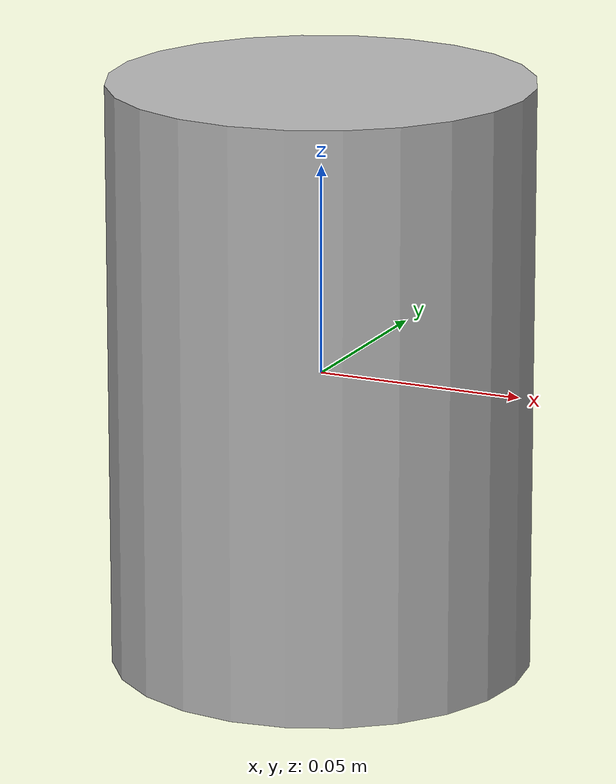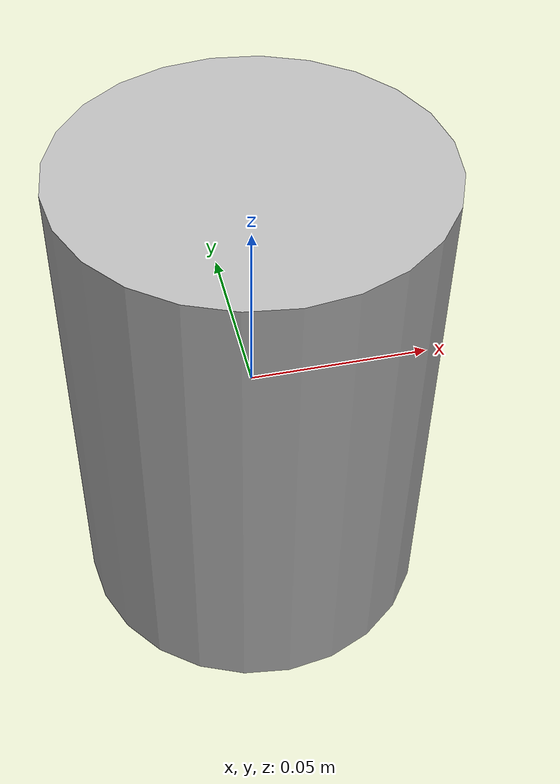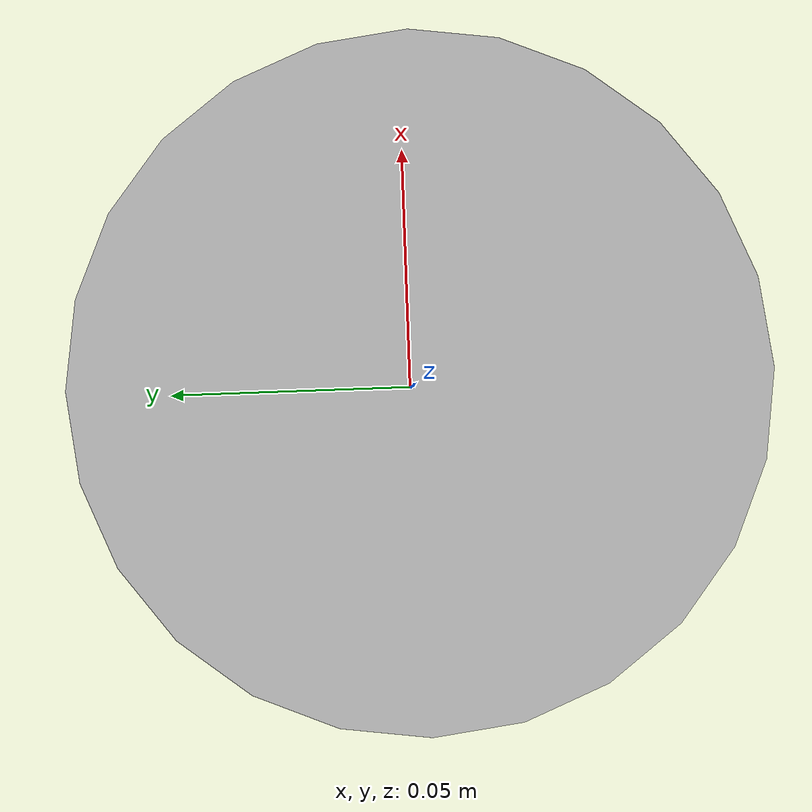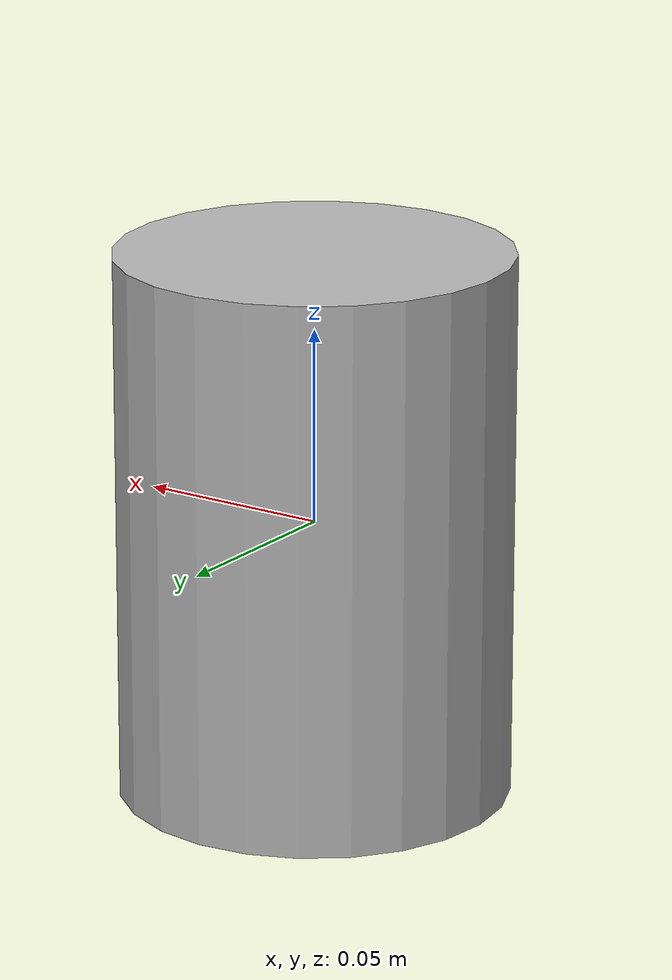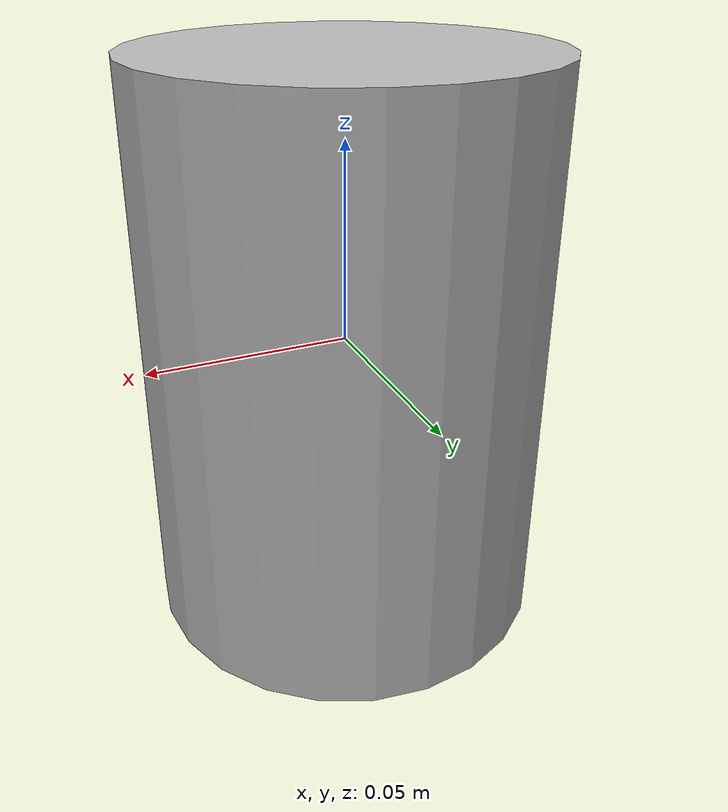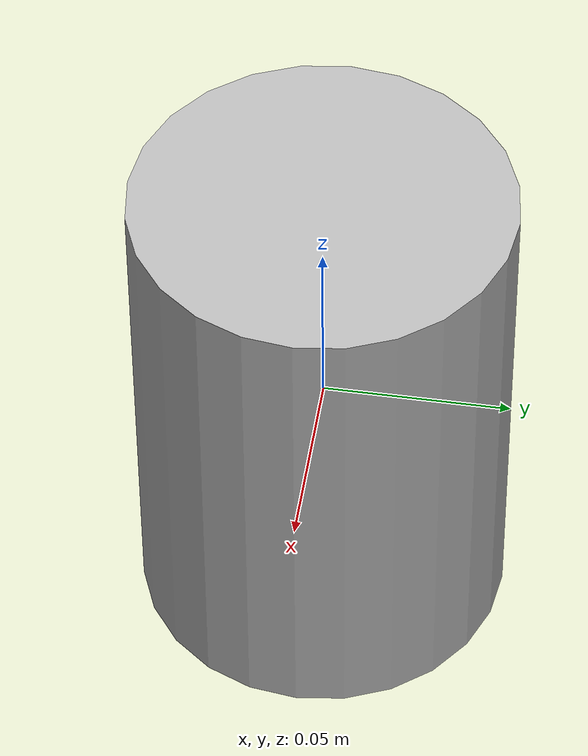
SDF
<?xml version="1.0" ?>
<sdf version="1.5">
  <model name="support_column">
    <link name="link">
      <inertial>
        <mass>100</mass>
      </inertial>
      <collision name="collision">
        <geometry>
          <cylinder>
            <radius>0.050</radius>
            <length>0.140</length>
          </cylinder>
        </geometry>
      </collision>
      <visual name="visual">
        <geometry>
          <cylinder>
            <radius>0.050</radius>
            <length>0.140</length>
          </cylinder>
        </geometry>
      </visual>
    </link>
  </model>
</sdf>
